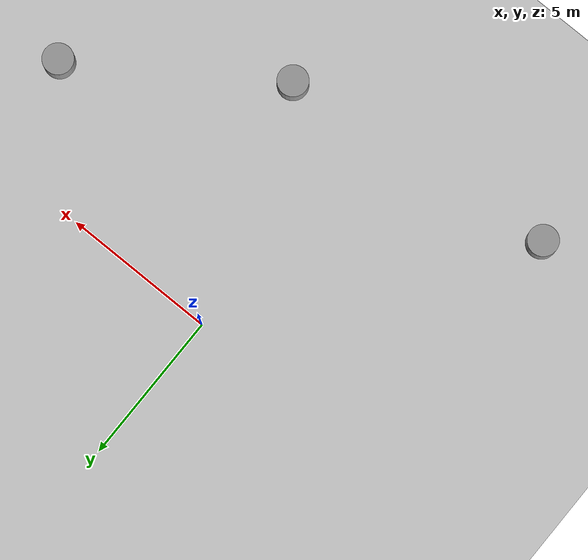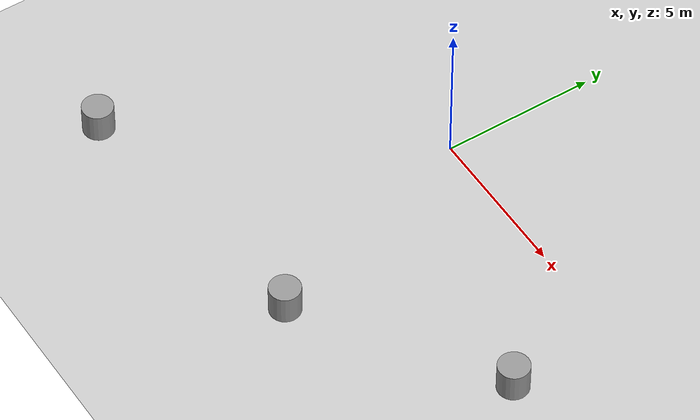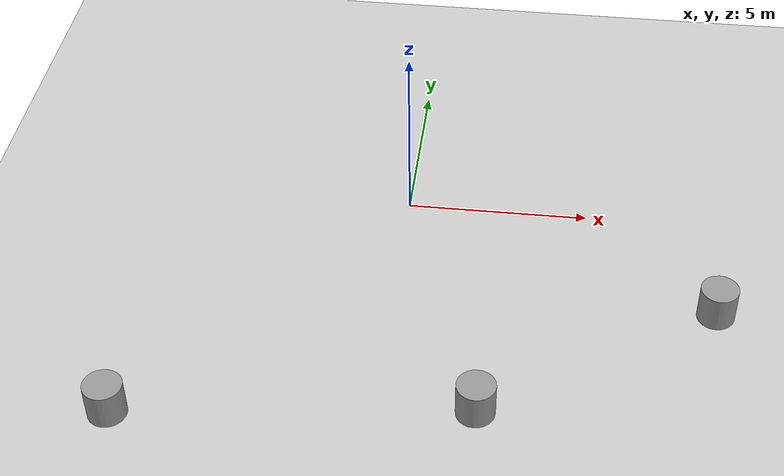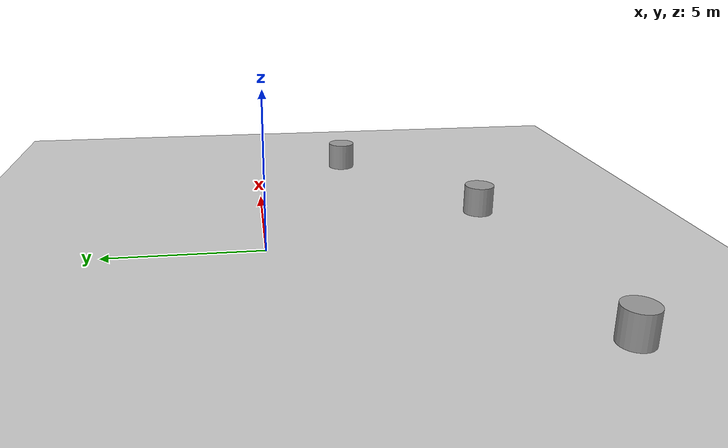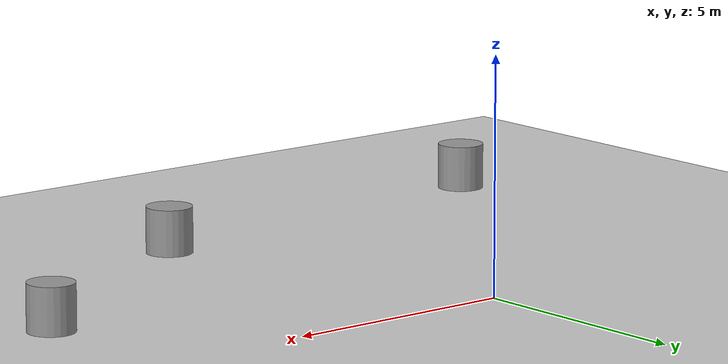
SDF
<sdf version="1.7">
 <world name="default">
  <model name="ground_plane">
   <static>1</static>
   <link name="link">
    <collision name="collision">
     <geometry><plane><normal>0 0 1</normal><size>100 100</size></plane></geometry>
     <surface>
      <contact><collide_bitmask>65535</collide_bitmask></contact>
      <friction><ode><mu>100</mu><mu2>50</mu2></ode></friction>
     </surface>
    </collision>
    <visual name="visual">
     <cast_shadows>0</cast_shadows>
     <geometry><plane><normal>0 0 1</normal><size>100 100</size></plane></geometry>
     <material>
      <script><uri>file://media/materials/scripts/gazebo.material</uri><name>Gazebo/Grey</name></script>
     </material>
    </visual>
   </link>
  </model>
  <model name="unit_cylinder_2">
   <pose>8.5 -3.5 0.499998 2e-06 -3e-06 0</pose>
   <link name="link">
    <inertial>
     <mass>1</mass>
     <inertia><ixx>0.145833</ixx><ixy>0</ixy><ixz>0</ixz><iyy>0.145833</iyy><iyz>0</iyz><izz>0.125</izz></inertia>
    </inertial>
    <collision name="collision">
     <geometry><cylinder><radius>0.5</radius><length>1</length></cylinder></geometry>
    </collision>
    <visual name="visual">
     <geometry><cylinder><radius>0.5</radius><length>1</length></cylinder></geometry>
     <material>
      <script><name>Gazebo/Grey</name><uri>file://media/materials/scripts/gazebo.material</uri></script>
     </material>
    </visual>
   </link>
  </model>
  <model name="unit_cylinder_3">
   <pose>2.5 -7.5 0.499992 -2e-06 2e-06 -0</pose>
   <link name="link">
    <inertial>
     <mass>1</mass>
     <inertia><ixx>0.145833</ixx><ixy>0</ixy><ixz>0</ixz><iyy>0.145833</iyy><iyz>0</iyz><izz>0.125</izz></inertia>
    </inertial>
    <collision name="collision">
     <geometry><cylinder><radius>0.5</radius><length>1</length></cylinder></geometry>
    </collision>
    <visual name="visual">
     <geometry><cylinder><radius>0.5</radius><length>1</length></cylinder></geometry>
     <material>
      <script><name>Gazebo/Grey</name><uri>file://media/materials/scripts/gazebo.material</uri></script>
     </material>
    </visual>
   </link>
  </model>
  <model name="unit_cylinder_4">
   <pose>-6.5 -8.5 0.499998 2e-06 -3e-06 0</pose>
   <link name="link">
    <inertial>
     <mass>1</mass>
     <inertia><ixx>0.145833</ixx><ixy>0</ixy><ixz>0</ixz><iyy>0.145833</iyy><iyz>0</iyz><izz>0.125</izz></inertia>
    </inertial>
    <collision name="collision">
     <geometry><cylinder><radius>0.5</radius><length>1</length></cylinder></geometry>
    </collision>
    <visual name="visual">
     <geometry><cylinder><radius>0.5</radius><length>1</length></cylinder></geometry>
     <material>
      <script><name>Gazebo/Grey</name><uri>file://media/materials/scripts/gazebo.material</uri></script>
     </material>
    </visual>
   </link>
  </model>
 </world>
</sdf>
